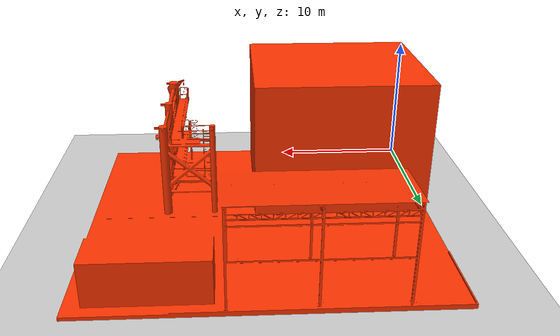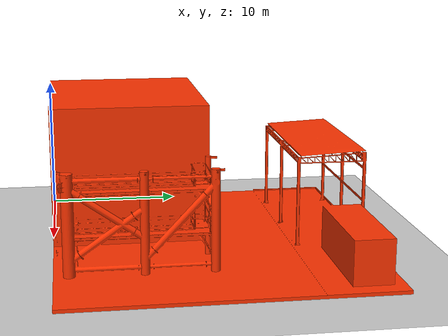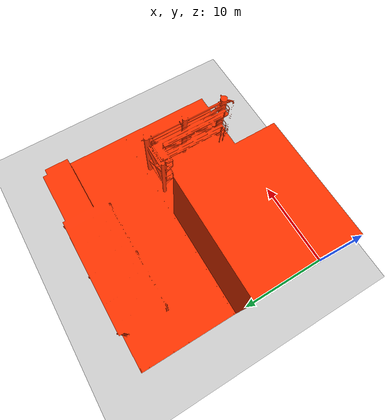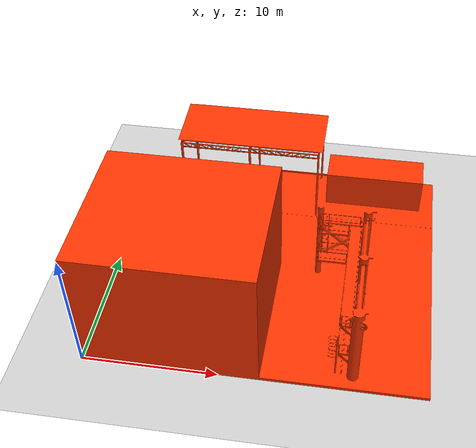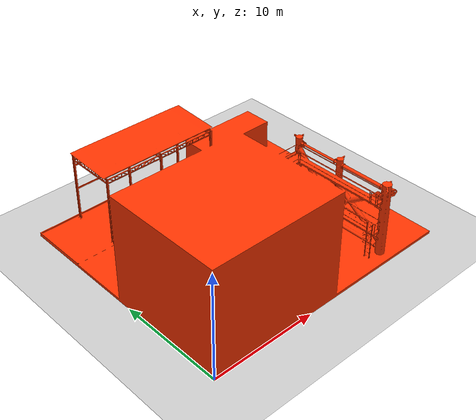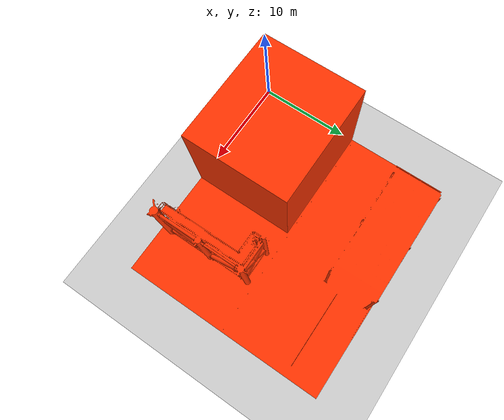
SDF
<?xml version="1.0" ?>
<sdf version='1.9'>
  <world name='conceitual_flare_world'>

    <physics default="1" name="default_physics" type="ode">
      <max_step_size>0.01</max_step_size>
      <real_time_factor>1.0</real_time_factor>
      <real_time_update_rate>0</real_time_update_rate>
      <ode>
        <solver>
          <island_threads>12</island_threads>
        </solver>
        <constraints>
          <contact_surface_layer>0.001</contact_surface_layer>
          <cfm>0.0</cfm>
          <contact_max_correcting_vel>1.0</contact_max_correcting_vel>
          <erp>0.2</erp>
        </constraints>
      </ode>
    </physics>

    <plugin name='ignition::gazebo::systems::Physics' filename='ignition-gazebo-physics-system'/>
    <plugin name='ignition::gazebo::systems::UserCommands' filename='ignition-gazebo-user-commands-system'/>
    <plugin name='ignition::gazebo::systems::SceneBroadcaster' filename='ignition-gazebo-scene-broadcaster-system'/>
    <plugin name='ignition::gazebo::systems::Contact' filename='ignition-gazebo-contact-system'/>
    <plugin name="ignition::gazebo::systems::Sensors" filename='ignition-gazebo-sensors-system'>
      <render_engine>ogre2</render_engine>
    </plugin>
    <plugin name="ignition::gazebo::systems::ForceTorque" filename="ignition-gazebo-forcetorque-system"/>

    <gravity>0 0 -9.8</gravity>
    <magnetic_field>6e-06 2.3e-05 -4.2e-05</magnetic_field>
    <atmosphere type='adiabatic'/>
    <scene>
      <ambient>0.4 0.4 0.4 1</ambient>
      <background>0.7 0.7 0.7 1</background>
      <shadows>true</shadows>
    </scene>

    <model name='ground_plane'>
      <static>true</static>
      <link name='link'>
        <collision name='collision'>
          <geometry>
            <plane>
              <normal>0 0 1</normal>
              <size>100 100</size>
            </plane>
          </geometry>
          <surface>
            <friction>
              <ode/>
            </friction>
            <bounce/>
            <contact/>
          </surface>
        </collision>
        <visual name='visual'>
          <geometry>
            <plane>
              <normal>0 0 1</normal>
              <size>100 100</size>
            </plane>
          </geometry>
          <material>
            <ambient>0.8 0.8 0.8 1</ambient>
            <diffuse>0.8 0.8 0.8 1</diffuse>
            <specular>0.8 0.8 0.8 1</specular>
          </material>
        </visual>
        <pose>0 0 0 0 -0 0</pose>
        <inertial>
          <pose>0 0 0 0 -0 0</pose>
          <mass>1</mass>
          <inertia>
            <ixx>1</ixx>
            <ixy>0</ixy>
            <ixz>0</ixz>
            <iyy>1</iyy>
            <iyz>0</iyz>
            <izz>1</izz>
          </inertia>
        </inertial>
        <enable_wind>false</enable_wind>
      </link>
      <pose>0 0 0 0 -0 0</pose>
      <self_collide>false</self_collide>
    </model>

    <include>
      <uri>model://conceitual_flare</uri>
    </include>

    <light name='sun' type='directional'>
      <pose>0 0 1000 0 -0 0</pose>
      <cast_shadows>false</cast_shadows>
      <intensity>1</intensity>
      <direction>-0.5 -0.5 -0.9</direction>
      <diffuse>0.8 0.8 0.8 1</diffuse>
      <specular>0.2 0.2 0.2 1</specular>
      <attenuation>
        <range>1000</range>
        <linear>0.01</linear>
        <constant>0.90000000000000002</constant>
        <quadratic>0.001</quadratic>
      </attenuation>
      <spot>
        <inner_angle>0</inner_angle>
        <outer_angle>0</outer_angle>
        <falloff>0</falloff>
      </spot>
    </light>
  </world>
</sdf>

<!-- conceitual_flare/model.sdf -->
<sdf version='1.9'>
    <model name='conceitual_flare'>
      <link name='link'>
        <visual name='visual'>
          <geometry>
            <mesh>
              <uri>model://conceitual_flare/meshes/conceitual_flare.stl</uri>
            </mesh>
          </geometry>
          <material> <!-- ORANGE COLOR -->
            <ambient>0 0 0 1</ambient>
            <diffuse>1 0.2 0 1</diffuse>
            <specular>0 0 0 0</specular>
            <emissive>0 0 0 1</emissive>
          </material>
        </visual>
        <collision name='collision'>
          <geometry>
            <mesh>
              <uri>model://conceitual_flare/meshes/conceitual_flare_collision.stl</uri>
            </mesh>
          </geometry>
        </collision>
        <pose>0 0 0 0 -0 0</pose>
        <inertial>
          <pose>0 0 0 0 -0 0</pose>
          <mass>1</mass>
          <inertia>
            <ixx>1</ixx>
            <ixy>0</ixy>
            <ixz>0</ixz>
            <iyy>1</iyy>
            <iyz>0</iyz>
            <izz>1</izz>
          </inertia>
        </inertial>
        <enable_wind>false</enable_wind>
      </link>
      <pose>0 0 0 0 -0 0</pose>
      <static>false</static>
      <self_collide>true</self_collide>

      <joint name="static_world_joint" type="fixed">
        <parent>world</parent>
        <child>link</child>
      </joint>
    </model>
</sdf>
